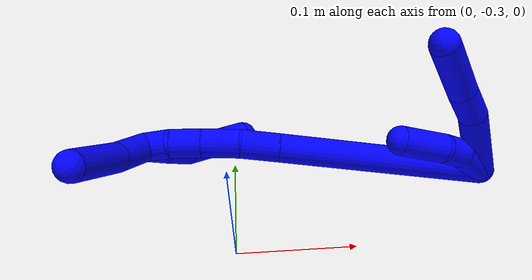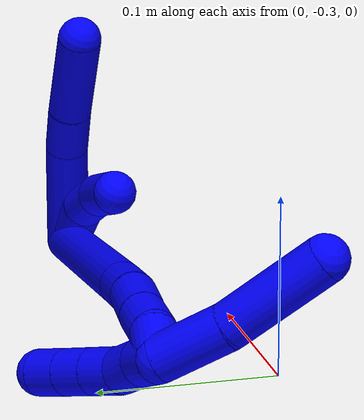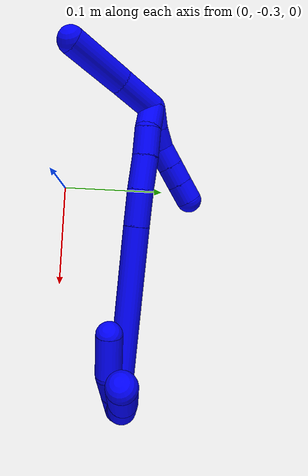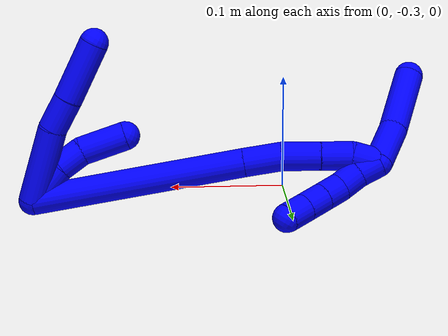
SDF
<sdf version="1.7">
 <world name="default">
  <model name="1">
   <static>0</static>
   <link name="1">
    <collision name="collision-cylinder-e_1_2_8">
     <pose>0.009609 -0.005706 -0.031764 2.96385 0.289403 2.04393</pose>
     <geometry><cylinder><radius>0.0125</radius><length>0.067344</length></cylinder></geometry>
     <surface>
      <friction><ode><mu>1.16</mu><mu2>1.16</mu2><slip1>0</slip1><slip2>0</slip2></ode></friction>
      <contact><ode><kp>1e+06</kp><kd>1</kd><max_vel>0</max_vel><min_depth>0.001</min_depth></ode></contact>
     </surface>
    </collision>
    <visual name="visual-cylinder-e_1_2_8">
     <pose>0.009609 -0.005706 -0.031764 2.96385 0.289403 2.04393</pose>
     <geometry><cylinder><radius>0.0125</radius><length>0.067344</length></cylinder></geometry>
     <material><ambient>0 0 1 1</ambient></material>
    </visual>
    <collision name="collision-cylinder-e_2_8_9">
     <pose>0.020447 -0.013903 -0.077914 2.97014 0.083916 0.908836</pose>
     <geometry><cylinder><radius>0.0125</radius><length>0.029306</length></cylinder></geometry>
     <surface>
      <friction><ode><mu>1.16</mu><mu2>1.16</mu2><slip1>0</slip1><slip2>0</slip2></ode></friction>
      <contact><ode><kp>1e+06</kp><kd>1</kd><max_vel>0</max_vel><min_depth>0.001</min_depth></ode></contact>
     </surface>
    </collision>
    <visual name="visual-cylinder-e_2_8_9">
     <pose>0.020447 -0.013903 -0.077914 2.97014 0.083916 0.908836</pose>
     <geometry><cylinder><radius>0.0125</radius><length>0.029306</length></cylinder></geometry>
     <material><ambient>0 0 1 1</ambient></material>
    </visual>
    <collision name="collision-cylinder-e_3_9_6">
     <pose>0.024711 -0.019417 -0.11863 3.02731 0.114047 1.56876</pose>
     <geometry><cylinder><radius>0.0125</radius><length>0.05335</length></cylinder></geometry>
     <surface>
      <friction><ode><mu>1.16</mu><mu2>1.16</mu2><slip1>0</slip1><slip2>0</slip2></ode></friction>
      <contact><ode><kp>1e+06</kp><kd>1</kd><max_vel>0</max_vel><min_depth>0.001</min_depth></ode></contact>
     </surface>
    </collision>
    <visual name="visual-cylinder-e_3_9_6">
     <pose>0.024711 -0.019417 -0.11863 3.02731 0.114047 1.56876</pose>
     <geometry><cylinder><radius>0.0125</radius><length>0.05335</length></cylinder></geometry>
     <material><ambient>0 0 1 1</ambient></material>
    </visual>
    <collision name="collision-cylinder-e_1_2_10">
     <pose>-0.002754 -0.000758 -0.018035 3.0996 -0.151418 -2.60142</pose>
     <geometry><cylinder><radius>0.0125</radius><length>0.036519</length></cylinder></geometry>
     <surface>
      <friction><ode><mu>1.16</mu><mu2>1.16</mu2><slip1>0</slip1><slip2>0</slip2></ode></friction>
      <contact><ode><kp>1e+06</kp><kd>1</kd><max_vel>0</max_vel><min_depth>0.001</min_depth></ode></contact>
     </surface>
    </collision>
    <visual name="visual-cylinder-e_1_2_10">
     <pose>-0.002754 -0.000758 -0.018035 3.0996 -0.151418 -2.60142</pose>
     <geometry><cylinder><radius>0.0125</radius><length>0.036519</length></cylinder></geometry>
     <material><ambient>0 0 1 1</ambient></material>
    </visual>
    <collision name="collision-cylinder-e_2_10_11">
     <pose>-0.010425 -0.001142 -0.046685 -3.10642 -0.433492 2.9822</pose>
     <geometry><cylinder><radius>0.0125</radius><length>0.023408</length></cylinder></geometry>
     <surface>
      <friction><ode><mu>1.16</mu><mu2>1.16</mu2><slip1>0</slip1><slip2>0</slip2></ode></friction>
      <contact><ode><kp>1e+06</kp><kd>1</kd><max_vel>0</max_vel><min_depth>0.001</min_depth></ode></contact>
     </surface>
    </collision>
    <visual name="visual-cylinder-e_2_10_11">
     <pose>-0.010425 -0.001142 -0.046685 -3.10642 -0.433492 2.9822</pose>
     <geometry><cylinder><radius>0.0125</radius><length>0.023408</length></cylinder></geometry>
     <material><ambient>0 0 1 1</ambient></material>
    </visual>
    <collision name="collision-cylinder-e_3_11_5">
     <pose>-0.027944 -0.004275 -0.072476 2.91457 -0.680265 -2.5183</pose>
     <geometry><cylinder><radius>0.0125</radius><length>0.040072</length></cylinder></geometry>
     <surface>
      <friction><ode><mu>1.16</mu><mu2>1.16</mu2><slip1>0</slip1><slip2>0</slip2></ode></friction>
      <contact><ode><kp>1e+06</kp><kd>1</kd><max_vel>0</max_vel><min_depth>0.001</min_depth></ode></contact>
     </surface>
    </collision>
    <visual name="visual-cylinder-e_3_11_5">
     <pose>-0.027944 -0.004275 -0.072476 2.91457 -0.680265 -2.5183</pose>
     <geometry><cylinder><radius>0.0125</radius><length>0.040072</length></cylinder></geometry>
     <material><ambient>0 0 1 1</ambient></material>
    </visual>
    <collision name="collision-cylinder-e_1_2_12">
     <pose>-0.066679 -0.022113 -0.059428 2.78538 -0.810526 -2.34701</pose>
     <geometry><cylinder><radius>0.0125</radius><length>0.18403</length></cylinder></geometry>
     <surface>
      <friction><ode><mu>1.16</mu><mu2>1.16</mu2><slip1>0</slip1><slip2>0</slip2></ode></friction>
      <contact><ode><kp>1e+06</kp><kd>1</kd><max_vel>0</max_vel><min_depth>0.001</min_depth></ode></contact>
     </surface>
    </collision>
    <visual name="visual-cylinder-e_1_2_12">
     <pose>-0.066679 -0.022113 -0.059428 2.78538 -0.810526 -2.34701</pose>
     <geometry><cylinder><radius>0.0125</radius><length>0.18403</length></cylinder></geometry>
     <material><ambient>0 0 1 1</ambient></material>
    </visual>
    <collision name="collision-cylinder-e_2_12_13">
     <pose>-0.145496 -0.048334 -0.129393 2.76977 -0.820778 -2.32555</pose>
     <geometry><cylinder><radius>0.0125</radius><length>0.033181</length></cylinder></geometry>
     <surface>
      <friction><ode><mu>1.16</mu><mu2>1.16</mu2><slip1>0</slip1><slip2>0</slip2></ode></friction>
      <contact><ode><kp>1e+06</kp><kd>1</kd><max_vel>0</max_vel><min_depth>0.001</min_depth></ode></contact>
     </surface>
    </collision>
    <visual name="visual-cylinder-e_2_12_13">
     <pose>-0.145496 -0.048334 -0.129393 2.76977 -0.820778 -2.32555</pose>
     <geometry><cylinder><radius>0.0125</radius><length>0.033181</length></cylinder></geometry>
     <material><ambient>0 0 1 1</ambient></material>
    </visual>
    <collision name="collision-cylinder-e_3_13_14">
     <pose>-0.171077 -0.056986 -0.148232 2.64093 -0.95732 -2.22593</pose>
     <geometry><cylinder><radius>0.0125</radius><length>0.032881</length></cylinder></geometry>
     <surface>
      <friction><ode><mu>1.16</mu><mu2>1.16</mu2><slip1>0</slip1><slip2>0</slip2></ode></friction>
      <contact><ode><kp>1e+06</kp><kd>1</kd><max_vel>0</max_vel><min_depth>0.001</min_depth></ode></contact>
     </surface>
    </collision>
    <visual name="visual-cylinder-e_3_13_14">
     <pose>-0.171077 -0.056986 -0.148232 2.64093 -0.95732 -2.22593</pose>
     <geometry><cylinder><radius>0.0125</radius><length>0.032881</length></cylinder></geometry>
     <material><ambient>0 0 1 1</ambient></material>
    </visual>
    <collision name="collision-cylinder-e_4_14_15">
     <pose>-0.195733 -0.064568 -0.163388 2.72422 -0.981547 -2.38698</pose>
     <geometry><cylinder><radius>0.0125</radius><length>0.026975</length></cylinder></geometry>
     <surface>
      <friction><ode><mu>1.16</mu><mu2>1.16</mu2><slip1>0</slip1><slip2>0</slip2></ode></friction>
      <contact><ode><kp>1e+06</kp><kd>1</kd><max_vel>0</max_vel><min_depth>0.001</min_depth></ode></contact>
     </surface>
    </collision>
    <visual name="visual-cylinder-e_4_14_15">
     <pose>-0.195733 -0.064568 -0.163388 2.72422 -0.981547 -2.38698</pose>
     <geometry><cylinder><radius>0.0125</radius><length>0.026975</length></cylinder></geometry>
     <material><ambient>0 0 1 1</ambient></material>
    </visual>
    <collision name="collision-cylinder-e_5_15_1">
     <pose>-0.217487 -0.071018 -0.173194 2.28431 -1.16625 -1.92989</pose>
     <geometry><cylinder><radius>0.0125</radius><length>0.022933</length></cylinder></geometry>
     <surface>
      <friction><ode><mu>1.16</mu><mu2>1.16</mu2><slip1>0</slip1><slip2>0</slip2></ode></friction>
      <contact><ode><kp>1e+06</kp><kd>1</kd><max_vel>0</max_vel><min_depth>0.001</min_depth></ode></contact>
     </surface>
    </collision>
    <visual name="visual-cylinder-e_5_15_1">
     <pose>-0.217487 -0.071018 -0.173194 2.28431 -1.16625 -1.92989</pose>
     <geometry><cylinder><radius>0.0125</radius><length>0.022933</length></cylinder></geometry>
     <material><ambient>0 0 1 1</ambient></material>
    </visual>
    <collision name="collision-cylinder-e_1_1_16">
     <pose>-0.231515 -0.061627 -0.191334 -2.44111 -0.173785 0.468189</pose>
     <geometry><cylinder><radius>0.0125</radius><length>0.040334</length></cylinder></geometry>
     <surface>
      <friction><ode><mu>1.16</mu><mu2>1.16</mu2><slip1>0</slip1><slip2>0</slip2></ode></friction>
      <contact><ode><kp>1e+06</kp><kd>1</kd><max_vel>0</max_vel><min_depth>0.001</min_depth></ode></contact>
     </surface>
    </collision>
    <visual name="visual-cylinder-e_1_1_16">
     <pose>-0.231515 -0.061627 -0.191334 -2.44111 -0.173785 0.468189</pose>
     <geometry><cylinder><radius>0.0125</radius><length>0.040334</length></cylinder></geometry>
     <material><ambient>0 0 1 1</ambient></material>
    </visual>
    <collision name="collision-cylinder-e_2_16_4">
     <pose>-0.235929 -0.030977 -0.230409 -2.49997 -0.031068 0.093437</pose>
     <geometry><cylinder><radius>0.0125</radius><length>0.059666</length></cylinder></geometry>
     <surface>
      <friction><ode><mu>1.16</mu><mu2>1.16</mu2><slip1>0</slip1><slip2>0</slip2></ode></friction>
      <contact><ode><kp>1e+06</kp><kd>1</kd><max_vel>0</max_vel><min_depth>0.001</min_depth></ode></contact>
     </surface>
    </collision>
    <visual name="visual-cylinder-e_2_16_4">
     <pose>-0.235929 -0.030977 -0.230409 -2.49997 -0.031068 0.093437</pose>
     <geometry><cylinder><radius>0.0125</radius><length>0.059666</length></cylinder></geometry>
     <material><ambient>0 0 1 1</ambient></material>
    </visual>
    <collision name="collision-cylinder-e_1_1_17">
     <pose>-0.222341 -0.074451 -0.167922 0.002482 0.604921 0.000775</pose>
     <geometry><cylinder><radius>0.0125</radius><length>0.02</length></cylinder></geometry>
     <surface>
      <friction><ode><mu>1.16</mu><mu2>1.16</mu2><slip1>0</slip1><slip2>0</slip2></ode></friction>
      <contact><ode><kp>1e+06</kp><kd>1</kd><max_vel>0</max_vel><min_depth>0.001</min_depth></ode></contact>
     </surface>
    </collision>
    <visual name="visual-cylinder-e_1_1_17">
     <pose>-0.222341 -0.074451 -0.167922 0.002482 0.604921 0.000775</pose>
     <geometry><cylinder><radius>0.0125</radius><length>0.02</length></cylinder></geometry>
     <material><ambient>0 0 1 1</ambient></material>
    </visual>
    <collision name="collision-cylinder-e_2_17_18">
     <pose>-0.212096 -0.076004 -0.150929 0.173032 0.473308 0.041829</pose>
     <geometry><cylinder><radius>0.0125</radius><length>0.02</length></cylinder></geometry>
     <surface>
      <friction><ode><mu>1.16</mu><mu2>1.16</mu2><slip1>0</slip1><slip2>0</slip2></ode></friction>
      <contact><ode><kp>1e+06</kp><kd>1</kd><max_vel>0</max_vel><min_depth>0.001</min_depth></ode></contact>
     </surface>
    </collision>
    <visual name="visual-cylinder-e_2_17_18">
     <pose>-0.212096 -0.076004 -0.150929 0.173032 0.473308 0.041829</pose>
     <geometry><cylinder><radius>0.0125</radius><length>0.02</length></cylinder></geometry>
     <material><ambient>0 0 1 1</ambient></material>
    </visual>
    <collision name="collision-cylinder-e_3_18_19">
     <pose>-0.201584 -0.081133 -0.134976 0.464089 0.637662 0.155687</pose>
     <geometry><cylinder><radius>0.0125</radius><length>0.02</length></cylinder></geometry>
     <surface>
      <friction><ode><mu>1.16</mu><mu2>1.16</mu2><slip1>0</slip1><slip2>0</slip2></ode></friction>
      <contact><ode><kp>1e+06</kp><kd>1</kd><max_vel>0</max_vel><min_depth>0.001</min_depth></ode></contact>
     </surface>
    </collision>
    <visual name="visual-cylinder-e_3_18_19">
     <pose>-0.201584 -0.081133 -0.134976 0.464089 0.637662 0.155687</pose>
     <geometry><cylinder><radius>0.0125</radius><length>0.02</length></cylinder></geometry>
     <material><ambient>0 0 1 1</ambient></material>
    </visual>
    <collision name="collision-cylinder-e_4_19_20">
     <pose>-0.189665 -0.088298 -0.120603 0.460831 0.639215 0.154961</pose>
     <geometry><cylinder><radius>0.0125</radius><length>0.02</length></cylinder></geometry>
     <surface>
      <friction><ode><mu>1.16</mu><mu2>1.16</mu2><slip1>0</slip1><slip2>0</slip2></ode></friction>
      <contact><ode><kp>1e+06</kp><kd>1</kd><max_vel>0</max_vel><min_depth>0.001</min_depth></ode></contact>
     </surface>
    </collision>
    <visual name="visual-cylinder-e_4_19_20">
     <pose>-0.189665 -0.088298 -0.120603 0.460831 0.639215 0.154961</pose>
     <geometry><cylinder><radius>0.0125</radius><length>0.02</length></cylinder></geometry>
     <material><ambient>0 0 1 1</ambient></material>
    </visual>
    <collision name="collision-cylinder-e_5_20_3">
     <pose>-0.17768 -0.095516 -0.106312 0.474491 0.645966 0.16151</pose>
     <geometry><cylinder><radius>0.0125</radius><length>0.02</length></cylinder></geometry>
     <surface>
      <friction><ode><mu>1.16</mu><mu2>1.16</mu2><slip1>0</slip1><slip2>0</slip2></ode></friction>
      <contact><ode><kp>1e+06</kp><kd>1</kd><max_vel>0</max_vel><min_depth>0.001</min_depth></ode></contact>
     </surface>
    </collision>
    <visual name="visual-cylinder-e_5_20_3">
     <pose>-0.17768 -0.095516 -0.106312 0.474491 0.645966 0.16151</pose>
     <geometry><cylinder><radius>0.0125</radius><length>0.02</length></cylinder></geometry>
     <material><ambient>0 0 1 1</ambient></material>
    </visual>
    <collision name="collision-sphere-3">
     <pose>-0.17166 -0.099164 -0.099208 0 -0 0</pose>
     <geometry><sphere><radius>0.0125</radius></sphere></geometry>
     <surface>
      <friction><ode><mu>1.16</mu><mu2>1.16</mu2><slip1>0</slip1><slip2>0</slip2></ode></friction>
      <contact><ode><kp>1e+06</kp><kd>1</kd><max_vel>0</max_vel><min_depth>0.001</min_depth></ode></contact>
     </surface>
    </collision>
    <visual name="visual-sphere-3">
     <pose>-0.17166 -0.099164 -0.099208 0 -0 0</pose>
     <geometry><sphere><radius>0.0125</radius></sphere></geometry>
     <material><ambient>0 0 1 1</ambient></material>
    </visual>
    <collision name="collision-sphere-20">
     <pose>-0.1837 -0.091867 -0.113415 0 -0 0</pose>
     <geometry><sphere><radius>0.0125</radius></sphere></geometry>
     <surface>
      <friction><ode><mu>1.16</mu><mu2>1.16</mu2><slip1>0</slip1><slip2>0</slip2></ode></friction>
      <contact><ode><kp>1e+06</kp><kd>1</kd><max_vel>0</max_vel><min_depth>0.001</min_depth></ode></contact>
     </surface>
    </collision>
    <visual name="visual-sphere-20">
     <pose>-0.1837 -0.091867 -0.113415 0 -0 0</pose>
     <geometry><sphere><radius>0.0125</radius></sphere></geometry>
     <material><ambient>0 0 1 1</ambient></material>
    </visual>
    <collision name="collision-sphere-19">
     <pose>-0.195631 -0.084729 -0.127791 0 -0 0</pose>
     <geometry><sphere><radius>0.0125</radius></sphere></geometry>
     <surface>
      <friction><ode><mu>1.16</mu><mu2>1.16</mu2><slip1>0</slip1><slip2>0</slip2></ode></friction>
      <contact><ode><kp>1e+06</kp><kd>1</kd><max_vel>0</max_vel><min_depth>0.001</min_depth></ode></contact>
     </surface>
    </collision>
    <visual name="visual-sphere-19">
     <pose>-0.195631 -0.084729 -0.127791 0 -0 0</pose>
     <geometry><sphere><radius>0.0125</radius></sphere></geometry>
     <material><ambient>0 0 1 1</ambient></material>
    </visual>
    <collision name="collision-sphere-11">
     <pose>-0.015341 -0.000769 -0.0573 0 -0 0</pose>
     <geometry><sphere><radius>0.0125</radius></sphere></geometry>
     <surface>
      <friction><ode><mu>1.16</mu><mu2>1.16</mu2><slip1>0</slip1><slip2>0</slip2></ode></friction>
      <contact><ode><kp>1e+06</kp><kd>1</kd><max_vel>0</max_vel><min_depth>0.001</min_depth></ode></contact>
     </surface>
    </collision>
    <visual name="visual-sphere-11">
     <pose>-0.015341 -0.000769 -0.0573 0 -0 0</pose>
     <geometry><sphere><radius>0.0125</radius></sphere></geometry>
     <material><ambient>0 0 1 1</ambient></material>
    </visual>
    <collision name="collision-sphere-10">
     <pose>-0.005509 -0.001516 -0.03607 0 -0 0</pose>
     <geometry><sphere><radius>0.0125</radius></sphere></geometry>
     <surface>
      <friction><ode><mu>1.16</mu><mu2>1.16</mu2><slip1>0</slip1><slip2>0</slip2></ode></friction>
      <contact><ode><kp>1e+06</kp><kd>1</kd><max_vel>0</max_vel><min_depth>0.001</min_depth></ode></contact>
     </surface>
    </collision>
    <visual name="visual-sphere-10">
     <pose>-0.005509 -0.001516 -0.03607 0 -0 0</pose>
     <geometry><sphere><radius>0.0125</radius></sphere></geometry>
     <material><ambient>0 0 1 1</ambient></material>
    </visual>
    <collision name="collision-sphere-6">
     <pose>0.027746 -0.022439 -0.144959 0 -0 0</pose>
     <geometry><sphere><radius>0.0125</radius></sphere></geometry>
     <surface>
      <friction><ode><mu>1.16</mu><mu2>1.16</mu2><slip1>0</slip1><slip2>0</slip2></ode></friction>
      <contact><ode><kp>1e+06</kp><kd>1</kd><max_vel>0</max_vel><min_depth>0.001</min_depth></ode></contact>
     </surface>
    </collision>
    <visual name="visual-sphere-6">
     <pose>0.027746 -0.022439 -0.144959 0 -0 0</pose>
     <geometry><sphere><radius>0.0125</radius></sphere></geometry>
     <material><ambient>0 0 1 1</ambient></material>
    </visual>
    <collision name="collision-sphere-9">
     <pose>0.021675 -0.016395 -0.092301 0 -0 0</pose>
     <geometry><sphere><radius>0.0125</radius></sphere></geometry>
     <surface>
      <friction><ode><mu>1.16</mu><mu2>1.16</mu2><slip1>0</slip1><slip2>0</slip2></ode></friction>
      <contact><ode><kp>1e+06</kp><kd>1</kd><max_vel>0</max_vel><min_depth>0.001</min_depth></ode></contact>
     </surface>
    </collision>
    <visual name="visual-sphere-9">
     <pose>0.021675 -0.016395 -0.092301 0 -0 0</pose>
     <geometry><sphere><radius>0.0125</radius></sphere></geometry>
     <material><ambient>0 0 1 1</ambient></material>
    </visual>
    <collision name="collision-sphere-2">
     <geometry><sphere><radius>0.0125</radius></sphere></geometry>
     <surface>
      <friction><ode><mu>1.16</mu><mu2>1.16</mu2><slip1>0</slip1><slip2>0</slip2></ode></friction>
      <contact><ode><kp>1e+06</kp><kd>1</kd><max_vel>0</max_vel><min_depth>0.001</min_depth></ode></contact>
     </surface>
    </collision>
    <visual name="visual-sphere-2">
     <geometry><sphere><radius>0.0125</radius></sphere></geometry>
     <material><ambient>0 0 1 1</ambient></material>
    </visual>
    <collision name="collision-sphere-8">
     <pose>0.019219 -0.011412 -0.063527 0 -0 0</pose>
     <geometry><sphere><radius>0.0125</radius></sphere></geometry>
     <surface>
      <friction><ode><mu>1.16</mu><mu2>1.16</mu2><slip1>0</slip1><slip2>0</slip2></ode></friction>
      <contact><ode><kp>1e+06</kp><kd>1</kd><max_vel>0</max_vel><min_depth>0.001</min_depth></ode></contact>
     </surface>
    </collision>
    <visual name="visual-sphere-8">
     <pose>0.019219 -0.011412 -0.063527 0 -0 0</pose>
     <geometry><sphere><radius>0.0125</radius></sphere></geometry>
     <material><ambient>0 0 1 1</ambient></material>
    </visual>
    <collision name="collision-sphere-5">
     <pose>-0.040547 -0.00778 -0.087653 0 -0 0</pose>
     <geometry><sphere><radius>0.0125</radius></sphere></geometry>
     <surface>
      <friction><ode><mu>1.16</mu><mu2>1.16</mu2><slip1>0</slip1><slip2>0</slip2></ode></friction>
      <contact><ode><kp>1e+06</kp><kd>1</kd><max_vel>0</max_vel><min_depth>0.001</min_depth></ode></contact>
     </surface>
    </collision>
    <visual name="visual-sphere-5">
     <pose>-0.040547 -0.00778 -0.087653 0 -0 0</pose>
     <geometry><sphere><radius>0.0125</radius></sphere></geometry>
     <material><ambient>0 0 1 1</ambient></material>
    </visual>
    <collision name="collision-sphere-12">
     <pose>-0.133357 -0.044225 -0.118857 0 -0 0</pose>
     <geometry><sphere><radius>0.0125</radius></sphere></geometry>
     <surface>
      <friction><ode><mu>1.16</mu><mu2>1.16</mu2><slip1>0</slip1><slip2>0</slip2></ode></friction>
      <contact><ode><kp>1e+06</kp><kd>1</kd><max_vel>0</max_vel><min_depth>0.001</min_depth></ode></contact>
     </surface>
    </collision>
    <visual name="visual-sphere-12">
     <pose>-0.133357 -0.044225 -0.118857 0 -0 0</pose>
     <geometry><sphere><radius>0.0125</radius></sphere></geometry>
     <material><ambient>0 0 1 1</ambient></material>
    </visual>
    <collision name="collision-sphere-13">
     <pose>-0.157635 -0.052443 -0.139929 0 -0 0</pose>
     <geometry><sphere><radius>0.0125</radius></sphere></geometry>
     <surface>
      <friction><ode><mu>1.16</mu><mu2>1.16</mu2><slip1>0</slip1><slip2>0</slip2></ode></friction>
      <contact><ode><kp>1e+06</kp><kd>1</kd><max_vel>0</max_vel><min_depth>0.001</min_depth></ode></contact>
     </surface>
    </collision>
    <visual name="visual-sphere-13">
     <pose>-0.157635 -0.052443 -0.139929 0 -0 0</pose>
     <geometry><sphere><radius>0.0125</radius></sphere></geometry>
     <material><ambient>0 0 1 1</ambient></material>
    </visual>
    <collision name="collision-sphere-14">
     <pose>-0.18452 -0.061529 -0.156536 0 -0 0</pose>
     <geometry><sphere><radius>0.0125</radius></sphere></geometry>
     <surface>
      <friction><ode><mu>1.16</mu><mu2>1.16</mu2><slip1>0</slip1><slip2>0</slip2></ode></friction>
      <contact><ode><kp>1e+06</kp><kd>1</kd><max_vel>0</max_vel><min_depth>0.001</min_depth></ode></contact>
     </surface>
    </collision>
    <visual name="visual-sphere-14">
     <pose>-0.18452 -0.061529 -0.156536 0 -0 0</pose>
     <geometry><sphere><radius>0.0125</radius></sphere></geometry>
     <material><ambient>0 0 1 1</ambient></material>
    </visual>
    <collision name="collision-sphere-15">
     <pose>-0.206946 -0.067606 -0.17024 0 -0 0</pose>
     <geometry><sphere><radius>0.0125</radius></sphere></geometry>
     <surface>
      <friction><ode><mu>1.16</mu><mu2>1.16</mu2><slip1>0</slip1><slip2>0</slip2></ode></friction>
      <contact><ode><kp>1e+06</kp><kd>1</kd><max_vel>0</max_vel><min_depth>0.001</min_depth></ode></contact>
     </surface>
    </collision>
    <visual name="visual-sphere-15">
     <pose>-0.206946 -0.067606 -0.17024 0 -0 0</pose>
     <geometry><sphere><radius>0.0125</radius></sphere></geometry>
     <material><ambient>0 0 1 1</ambient></material>
    </visual>
    <collision name="collision-sphere-1">
     <pose>-0.228028 -0.074431 -0.176148 0 -0 0</pose>
     <geometry><sphere><radius>0.0125</radius></sphere></geometry>
     <surface>
      <friction><ode><mu>1.16</mu><mu2>1.16</mu2><slip1>0</slip1><slip2>0</slip2></ode></friction>
      <contact><ode><kp>1e+06</kp><kd>1</kd><max_vel>0</max_vel><min_depth>0.001</min_depth></ode></contact>
     </surface>
    </collision>
    <visual name="visual-sphere-1">
     <pose>-0.228028 -0.074431 -0.176148 0 -0 0</pose>
     <geometry><sphere><radius>0.0125</radius></sphere></geometry>
     <material><ambient>0 0 1 1</ambient></material>
    </visual>
    <collision name="collision-sphere-18">
     <pose>-0.207537 -0.077536 -0.142161 0 -0 0</pose>
     <geometry><sphere><radius>0.0125</radius></sphere></geometry>
     <surface>
      <friction><ode><mu>1.16</mu><mu2>1.16</mu2><slip1>0</slip1><slip2>0</slip2></ode></friction>
      <contact><ode><kp>1e+06</kp><kd>1</kd><max_vel>0</max_vel><min_depth>0.001</min_depth></ode></contact>
     </surface>
    </collision>
    <visual name="visual-sphere-18">
     <pose>-0.207537 -0.077536 -0.142161 0 -0 0</pose>
     <geometry><sphere><radius>0.0125</radius></sphere></geometry>
     <material><ambient>0 0 1 1</ambient></material>
    </visual>
    <collision name="collision-sphere-16">
     <pose>-0.235002 -0.048824 -0.20652 0 -0 0</pose>
     <geometry><sphere><radius>0.0125</radius></sphere></geometry>
     <surface>
      <friction><ode><mu>1.16</mu><mu2>1.16</mu2><slip1>0</slip1><slip2>0</slip2></ode></friction>
      <contact><ode><kp>1e+06</kp><kd>1</kd><max_vel>0</max_vel><min_depth>0.001</min_depth></ode></contact>
     </surface>
    </collision>
    <visual name="visual-sphere-16">
     <pose>-0.235002 -0.048824 -0.20652 0 -0 0</pose>
     <geometry><sphere><radius>0.0125</radius></sphere></geometry>
     <material><ambient>0 0 1 1</ambient></material>
    </visual>
    <collision name="collision-sphere-4">
     <pose>-0.236856 -0.013131 -0.254297 0 -0 0</pose>
     <geometry><sphere><radius>0.0125</radius></sphere></geometry>
     <surface>
      <friction><ode><mu>1.16</mu><mu2>1.16</mu2><slip1>0</slip1><slip2>0</slip2></ode></friction>
      <contact><ode><kp>1e+06</kp><kd>1</kd><max_vel>0</max_vel><min_depth>0.001</min_depth></ode></contact>
     </surface>
    </collision>
    <visual name="visual-sphere-4">
     <pose>-0.236856 -0.013131 -0.254297 0 -0 0</pose>
     <geometry><sphere><radius>0.0125</radius></sphere></geometry>
     <material><ambient>0 0 1 1</ambient></material>
    </visual>
    <collision name="collision-sphere-17">
     <pose>-0.216654 -0.074472 -0.159697 0 -0 0</pose>
     <geometry><sphere><radius>0.0125</radius></sphere></geometry>
     <surface>
      <friction><ode><mu>1.16</mu><mu2>1.16</mu2><slip1>0</slip1><slip2>0</slip2></ode></friction>
      <contact><ode><kp>1e+06</kp><kd>1</kd><max_vel>0</max_vel><min_depth>0.001</min_depth></ode></contact>
     </surface>
    </collision>
    <visual name="visual-sphere-17">
     <pose>-0.216654 -0.074472 -0.159697 0 -0 0</pose>
     <geometry><sphere><radius>0.0125</radius></sphere></geometry>
     <material><ambient>0 0 1 1</ambient></material>
    </visual>
    <inertial>
     <pose>-0.100498 -0.03415 -0.105293 0 -0 0</pose>
     <mass>0.75</mass>
     <inertia>
      <ixx>-0.000487</ixx>
      <ixy>0</ixy>
      <ixz>0</ixz>
      <iyy>0.000234</iyy>
      <iyz>0</iyz>
      <izz>0.000478</izz>
     </inertia>
    </inertial>
   </link>
   <pose>0.221035 -0.232847 0.0115 -3.06304 -0.556092 0.146145</pose>
  </model>
 </world>
</sdf>
